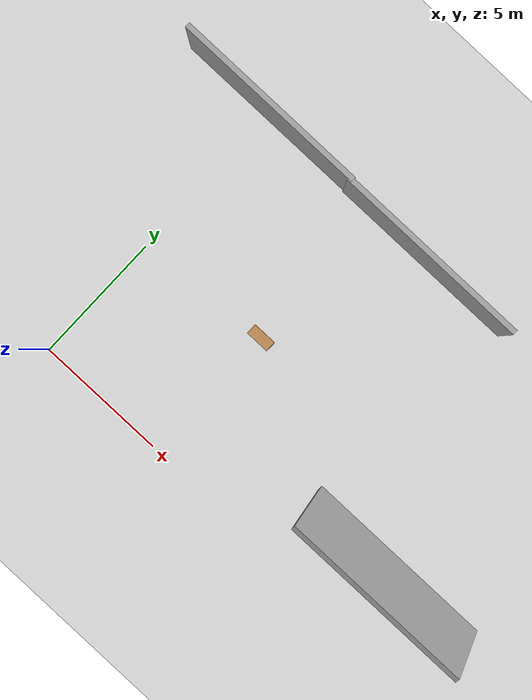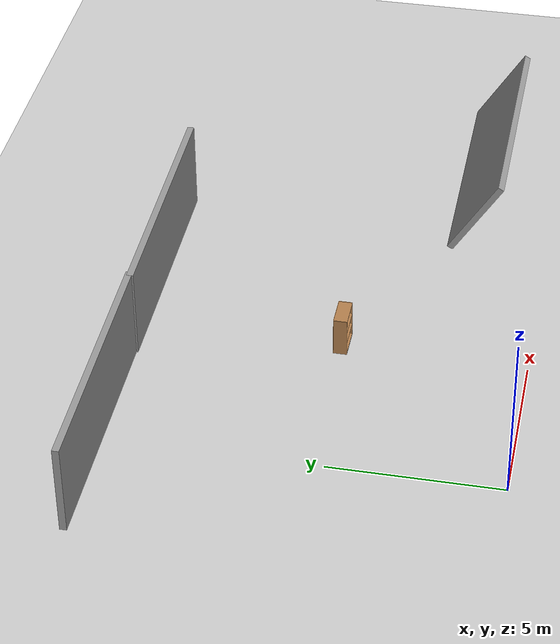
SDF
<sdf version="1.7">
 <world name="default">
  <model name="bookshelf_1">
   <static>1</static>
   <link name="link">
    <inertial><mass>1</mass></inertial>
    <collision name="back">
     <pose>0 0.005 0.6 0 -0 0</pose>
     <geometry><box><size>0.9 0.01 1.2</size></box></geometry>
    </collision>
    <visual name="visual1">
     <pose>0 0.005 0.6 0 -0 0</pose>
     <geometry><box><size>0.9 0.01 1.2</size></box></geometry>
     <material>
      <script><uri>file://media/materials/scripts/gazebo.material</uri><name>Gazebo/Wood</name></script>
     </material>
    </visual>
    <collision name="left_side">
     <pose>0.45 -0.195 0.6 0 -0 0</pose>
     <geometry><box><size>0.02 0.4 1.2</size></box></geometry>
    </collision>
    <visual name="visual2">
     <pose>0.45 -0.195 0.6 0 -0 0</pose>
     <geometry><box><size>0.02 0.4 1.2</size></box></geometry>
     <material>
      <script><uri>file://media/materials/scripts/gazebo.material</uri><name>Gazebo/Wood</name></script>
     </material>
    </visual>
    <collision name="right_side">
     <pose>-0.45 -0.195 0.6 0 -0 0</pose>
     <geometry><box><size>0.02 0.4 1.2</size></box></geometry>
    </collision>
    <visual name="visual3">
     <pose>-0.45 -0.195 0.6 0 -0 0</pose>
     <geometry><box><size>0.02 0.4 1.2</size></box></geometry>
     <material>
      <script><uri>file://media/materials/scripts/gazebo.material</uri><name>Gazebo/Wood</name></script>
     </material>
    </visual>
    <collision name="bottom">
     <pose>0 -0.195 0.03 0 -0 0</pose>
     <geometry><box><size>0.88 0.4 0.06</size></box></geometry>
    </collision>
    <visual name="visual4">
     <pose>0 -0.195 0.03 0 -0 0</pose>
     <geometry><box><size>0.88 0.4 0.06</size></box></geometry>
     <material>
      <script><uri>file://media/materials/scripts/gazebo.material</uri><name>Gazebo/Wood</name></script>
     </material>
    </visual>
    <collision name="top">
     <pose>0 -0.195 1.19 0 -0 0</pose>
     <geometry><box><size>0.88 0.4 0.02</size></box></geometry>
    </collision>
    <visual name="visual5">
     <pose>0 -0.195 1.19 0 -0 0</pose>
     <geometry><box><size>0.88 0.4 0.02</size></box></geometry>
     <material>
      <script><uri>file://media/materials/scripts/gazebo.material</uri><name>Gazebo/Wood</name></script>
     </material>
    </visual>
    <collision name="low_shelf">
     <pose>0 -0.195 0.43 0 -0 0</pose>
     <geometry><box><size>0.88 0.4 0.02</size></box></geometry>
    </collision>
    <visual name="visual6">
     <pose>0 -0.195 0.43 0 -0 0</pose>
     <geometry><box><size>0.88 0.4 0.02</size></box></geometry>
     <material>
      <script><uri>file://media/materials/scripts/gazebo.material</uri><name>Gazebo/Wood</name></script>
     </material>
    </visual>
    <collision name="high_shelf">
     <pose>0 -0.195 0.8 0 -0 0</pose>
     <geometry><box><size>0.88 0.4 0.02</size></box></geometry>
    </collision>
    <visual name="visual7">
     <pose>0 -0.195 0.8 0 -0 0</pose>
     <geometry><box><size>0.88 0.4 0.02</size></box></geometry>
     <material>
      <script><uri>file://media/materials/scripts/gazebo.material</uri><name>Gazebo/Wood</name></script>
     </material>
    </visual>
   </link>
   <pose>5.19886 5.60727 0 0 -0 0</pose>
  </model>
  <model name="ground_plane">
   <static>1</static>
   <link name="link">
    <collision name="collision">
     <geometry><plane><normal>0 0 1</normal><size>100 100</size></plane></geometry>
     <surface>
      <contact><collide_bitmask>65535</collide_bitmask></contact>
      <friction><ode><mu>100</mu><mu2>50</mu2></ode></friction>
     </surface>
    </collision>
    <visual name="visual">
     <cast_shadows>0</cast_shadows>
     <geometry><plane><normal>0 0 1</normal><size>100 100</size></plane></geometry>
     <material>
      <script><uri>file://media/materials/scripts/gazebo.material</uri><name>Gazebo/Grey</name></script>
     </material>
    </visual>
   </link>
   <pose>6.49469 -2.5298 0 0 -0 0</pose>
  </model>
  <model name="grey_wall_0">
   <static>1</static>
   <link name="link">
    <pose>0 0 1.4 0 -0 0</pose>
    <collision name="collision"><geometry><box><size>7.5 0.2 2.8</size></box></geometry></collision>
    <visual name="visual">
     <cast_shadows>0</cast_shadows>
     <geometry><box><size>7.5 0.2 2.8</size></box></geometry>
     <material>
      <script>
       <uri>model://grey_wall/materials/scripts</uri>
       <uri>model://grey_wall/materials/textures</uri>
       <name>vrc/grey_wall</name>
      </script>
     </material>
    </visual>
   </link>
   <pose>0.157864 11.306 0 0 -0 0</pose>
  </model>
  <model name="grey_wall_1">
   <static>1</static>
   <link name="link">
    <pose>0 0 1.4 0 -0 0</pose>
    <collision name="collision"><geometry><box><size>7.5 0.2 2.8</size></box></geometry></collision>
    <visual name="visual">
     <cast_shadows>0</cast_shadows>
     <geometry><box><size>7.5 0.2 2.8</size></box></geometry>
     <material>
      <script>
       <uri>model://grey_wall/materials/scripts</uri>
       <uri>model://grey_wall/materials/textures</uri>
       <name>vrc/grey_wall</name>
      </script>
     </material>
    </visual>
   </link>
   <pose>7.50558 11.2581 0 0 -0 0</pose>
  </model>
  <model name="grey_wall_2">
   <static>1</static>
   <link name="link">
    <pose>0 0 1.4 0 -0 0</pose>
    <collision name="collision"><geometry><box><size>7.5 0.2 2.8</size></box></geometry></collision>
    <visual name="visual">
     <cast_shadows>0</cast_shadows>
     <geometry><box><size>7.5 0.2 2.8</size></box></geometry>
     <material>
      <script>
       <uri>model://grey_wall/materials/scripts</uri>
       <uri>model://grey_wall/materials/textures</uri>
       <name>vrc/grey_wall</name>
      </script>
     </material>
    </visual>
   </link>
   <pose>14.065 2.97631 -4e-06 0.55 -0 0</pose>
  </model>
 </world>
</sdf>
